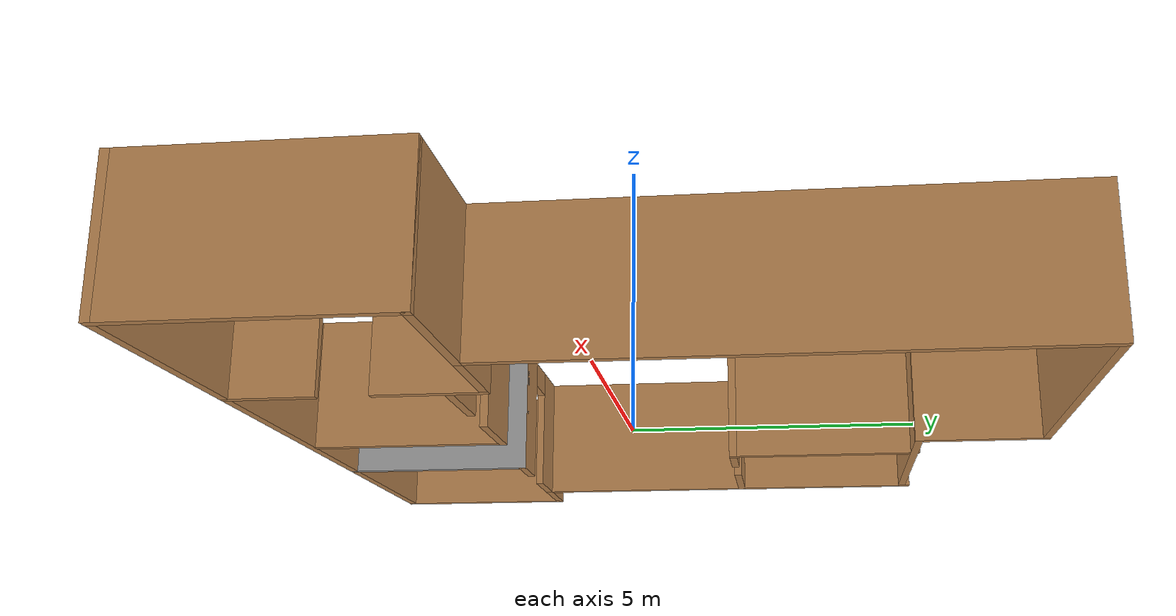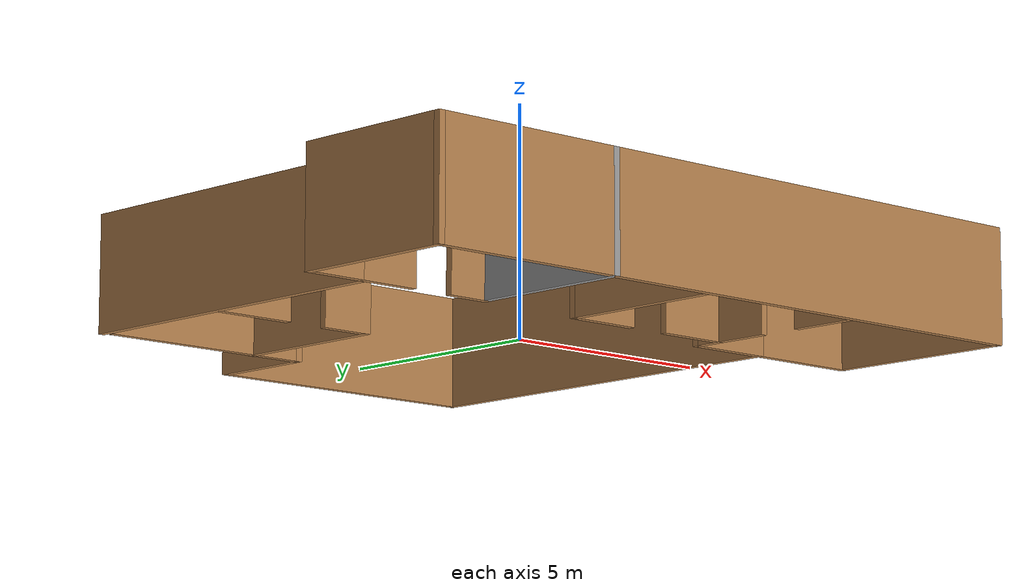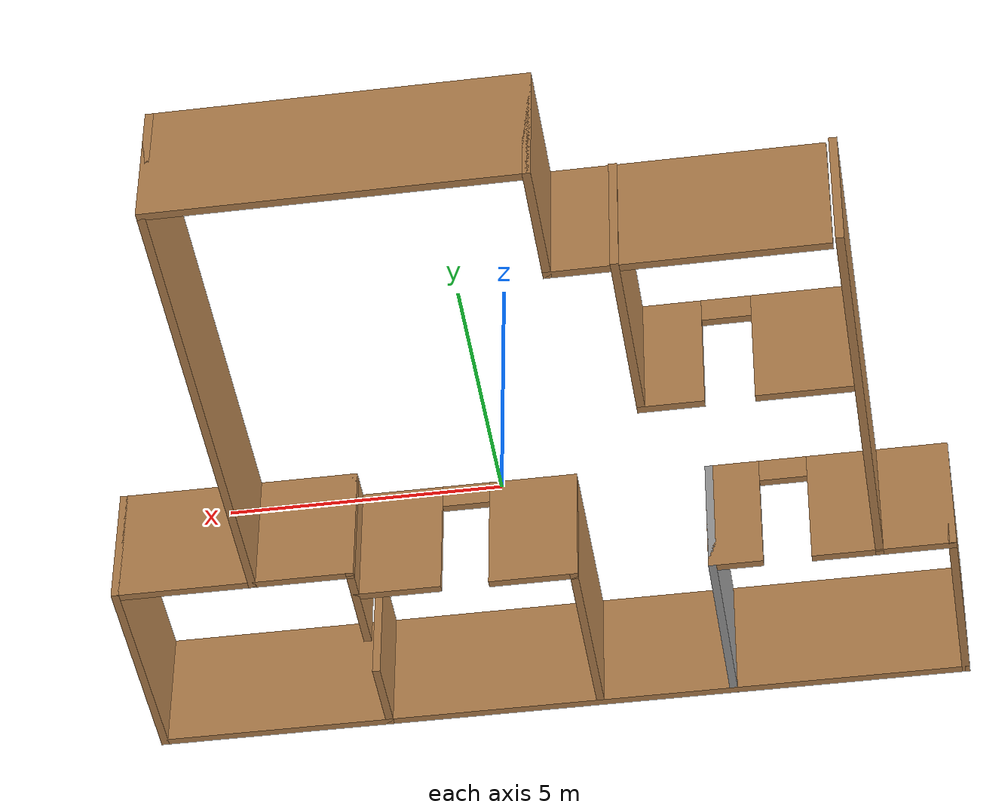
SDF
<?xml version='1.0'?>
<sdf version='1.7'>
  <model name='room3'>
    <pose>-0.176304 0.609734 0 0 -0 0</pose>
    <link name='Wall_0'>
      <collision name='Wall_0_Collision'>
        <geometry>
          <box>
            <size>5 0.15 2.5</size>
          </box>
        </geometry>
        <pose>0 0 1.25 0 -0 0</pose>
      </collision>
      <visual name='Wall_0_Visual'>
        <pose>0 0 1.25 0 -0 0</pose>
        <geometry>
          <box>
            <size>5 0.15 2.5</size>
          </box>
        </geometry>
        <material>
          <script>
            <uri>file://media/materials/scripts/gazebo.material</uri>
            <name>Gazebo/Wood</name>
          </script>
          <ambient>1 1 1 1</ambient>
        </material>
        <meta>
          <layer>0</layer>
        </meta>
      </visual>
      <pose>-3.825 4.625 0 0 -0 0</pose>
    </link>
    <link name='Wall_10'>
      <collision name='Wall_10_Collision'>
        <geometry>
          <box>
            <size>9.75 0.15 2.5</size>
          </box>
        </geometry>
        <pose>0 0 1.25 0 -0 0</pose>
      </collision>
      <visual name='Wall_10_Visual'>
        <pose>0 0 1.25 0 -0 0</pose>
        <geometry>
          <box>
            <size>9.75 0.15 2.5</size>
          </box>
        </geometry>
        <material>
          <script>
            <uri>file://media/materials/scripts/gazebo.material</uri>
            <name>Gazebo/Wood</name>
          </script>
          <ambient>1 1 1 1</ambient>
        </material>
        <meta>
          <layer>0</layer>
        </meta>
      </visual>
      <pose>5.2 2.175 0 0 -0 -1.5708</pose>
    </link>
    <link name='Wall_12'>
      <collision name='Wall_12_Collision'>
        <geometry>
          <box>
            <size>2.75 0.15 2.5</size>
          </box>
        </geometry>
        <pose>0 0 1.25 0 -0 0</pose>
      </collision>
      <visual name='Wall_12_Visual'>
        <pose>0 0 1.25 0 -0 0</pose>
        <geometry>
          <box>
            <size>2.75 0.15 2.5</size>
          </box>
        </geometry>
        <material>
          <script>
            <uri>file://media/materials/scripts/gazebo.material</uri>
            <name>Gazebo/Wood</name>
          </script>
          <ambient>1 1 1 1</ambient>
        </material>
        <meta>
          <layer>0</layer>
        </meta>
      </visual>
      <pose>6.5 -2.625 0 0 -0 0</pose>
    </link>
    <link name='Wall_13'>
      <collision name='Wall_13_Collision'>
        <geometry>
          <box>
            <size>4.5 0.15 2.5</size>
          </box>
        </geometry>
        <pose>0 0 1.25 0 -0 0</pose>
      </collision>
      <visual name='Wall_13_Visual'>
        <pose>0 0 1.25 0 -0 0</pose>
        <geometry>
          <box>
            <size>4.5 0.15 2.5</size>
          </box>
        </geometry>
        <material>
          <script>
            <uri>file://media/materials/scripts/gazebo.material</uri>
            <name>Gazebo/Wood</name>
          </script>
          <ambient>1 1 1 1</ambient>
        </material>
        <meta>
          <layer>0</layer>
        </meta>
      </visual>
      <pose>7.8 -4.8 0 0 -0 -1.5708</pose>
    </link>
    <link name='Wall_14'>
      <collision name='Wall_14_Collision'>
        <geometry>
          <box>
            <size>15.75 0.15 2.5</size>
          </box>
        </geometry>
        <pose>0 0 1.25 0 -0 0</pose>
      </collision>
      <visual name='Wall_14_Visual'>
        <pose>0 0 1.25 0 -0 0</pose>
        <geometry>
          <box>
            <size>15.75 0.15 2.5</size>
          </box>
        </geometry>
        <material>
          <script>
            <uri>file://media/materials/scripts/gazebo.material</uri>
            <name>Gazebo/Wood</name>
          </script>
          <ambient>1 1 1 1</ambient>
        </material>
        <meta>
          <layer>0</layer>
        </meta>
      </visual>
      <pose>0 -6.975 0 0 -0 3.14159</pose>
    </link>
    <link name='Wall_15'>
      <collision name='Wall_15_Collision'>
        <geometry>
          <box>
            <size>3.75 0.15 2.5</size>
          </box>
        </geometry>
        <pose>0 0 1.25 0 -0 0</pose>
      </collision>
      <visual name='Wall_15_Visual'>
        <pose>0 0 1.25 0 -0 0</pose>
        <geometry>
          <box>
            <size>3.75 0.15 2.5</size>
          </box>
        </geometry>
        <material>
          <script>
            <uri>file://media/materials/scripts/gazebo.material</uri>
            <name>Gazebo/Wood</name>
          </script>
          <ambient>1 1 1 1</ambient>
        </material>
        <meta>
          <layer>0</layer>
        </meta>
      </visual>
      <pose>-7.8 -5.175 0 0 -0 1.5708</pose>
    </link>
    <link name='Wall_16'>
      <collision name='Wall_16_Collision'>
        <geometry>
          <box>
            <size>1.5 0.15 2.5</size>
          </box>
        </geometry>
        <pose>0 0 1.25 0 -0 0</pose>
      </collision>
      <visual name='Wall_16_Visual'>
        <pose>0 0 1.25 0 -0 0</pose>
        <geometry>
          <box>
            <size>1.5 0.15 2.5</size>
          </box>
        </geometry>
        <material>
          <script>
            <uri>file://media/materials/scripts/gazebo.material</uri>
            <name>Gazebo/Wood</name>
          </script>
          <ambient>1 1 1 1</ambient>
        </material>
        <meta>
          <layer>0</layer>
        </meta>
      </visual>
      <pose>-7.125 -3.375 0 0 -0 0</pose>
    </link>
    <link name='Wall_17'>
      <collision name='Wall_17_Collision'>
        <geometry>
          <box>
            <size>8.25 0.15 2.5</size>
          </box>
        </geometry>
        <pose>0 0 1.25 0 -0 0</pose>
      </collision>
      <visual name='Wall_17_Visual'>
        <pose>0 0 1.25 0 -0 0</pose>
        <geometry>
          <box>
            <size>8.25 0.15 2.5</size>
          </box>
        </geometry>
        <material>
          <script>
            <uri>file://media/materials/scripts/gazebo.material</uri>
            <name>Gazebo/Wood</name>
          </script>
          <ambient>1 1 1 1</ambient>
        </material>
        <meta>
          <layer>0</layer>
        </meta>
      </visual>
      <pose>-6.45 0.675 0 0 -0 1.5708</pose>
    </link>
    <link name='Wall_19'>
      <collision name='Wall_19_Collision'>
        <geometry>
          <box>
            <size>3.75 0.15 2.5</size>
          </box>
        </geometry>
        <pose>0 0 1.25 0 -0 0</pose>
      </collision>
      <visual name='Wall_19_Visual'>
        <pose>0 0 1.25 0 -0 0</pose>
        <geometry>
          <box>
            <size>3.75 0.15 2.5</size>
          </box>
        </geometry>
        <material>
          <script>
            <uri>file://media/materials/scripts/gazebo.material</uri>
            <name>Gazebo/Wood</name>
          </script>
          <ambient>1 1 1 1</ambient>
        </material>
        <meta>
          <layer>0</layer>
        </meta>
      </visual>
      <pose>-2.57633 2.85608 0 0 -0 -1.5708</pose>
    </link>
    <link name='Wall_20'>
      <pose>-4.50133 1.05608 0 0 -0 3.14159</pose>
      <visual name='Wall_20_Visual_0'>
        <pose>-1.39215 0 1.25 0 -0 0</pose>
        <geometry>
          <box>
            <size>1.21569 0.15 2.5</size>
          </box>
        </geometry>
        <material>
          <script>
            <uri>file://media/materials/scripts/gazebo.material</uri>
            <name>Gazebo/Wood</name>
          </script>
          <ambient>1 1 1 1</ambient>
        </material>
        <meta>
          <layer>0</layer>
        </meta>
      </visual>
      <collision name='Wall_20_Collision_0'>
        <geometry>
          <box>
            <size>1.21569 0.15 2.5</size>
          </box>
        </geometry>
        <pose>-1.39215 0 1.25 0 -0 0</pose>
      </collision>
      <visual name='Wall_20_Visual_1'>
        <pose>1.05785 0 1.25 0 -0 0</pose>
        <geometry>
          <box>
            <size>1.88431 0.15 2.5</size>
          </box>
        </geometry>
        <material>
          <script>
            <uri>file://media/materials/scripts/gazebo.material</uri>
            <name>Gazebo/Wood</name>
          </script>
          <ambient>1 1 1 1</ambient>
        </material>
        <meta>
          <layer>0</layer>
        </meta>
      </visual>
      <collision name='Wall_20_Collision_1'>
        <geometry>
          <box>
            <size>1.88431 0.15 2.5</size>
          </box>
        </geometry>
        <pose>1.05785 0 1.25 0 -0 0</pose>
      </collision>
      <visual name='Wall_20_Visual_2'>
        <pose>-0.334308 0 2.25 0 -0 0</pose>
        <geometry>
          <box>
            <size>0.9 0.15 0.5</size>
          </box>
        </geometry>
        <material>
          <script>
            <uri>file://media/materials/scripts/gazebo.material</uri>
            <name>Gazebo/Wood</name>
          </script>
          <ambient>1 1 1 1</ambient>
        </material>
        <meta>
          <layer>0</layer>
        </meta>
      </visual>
      <collision name='Wall_20_Collision_2'>
        <geometry>
          <box>
            <size>0.9 0.15 0.5</size>
          </box>
        </geometry>
        <pose>-0.334308 0 2.25 0 -0 0</pose>
      </collision>
    </link>
    <link name='Wall_22'>
      <collision name='Wall_22_Collision'>
        <geometry>
          <box>
            <size>2 0.15 2.5</size>
          </box>
        </geometry>
        <pose>0 0 1.25 0 -0 0</pose>
      </collision>
      <visual name='Wall_22_Visual'>
        <pose>0 0 1.25 0 -0 0</pose>
        <geometry>
          <box>
            <size>2 0.15 2.5</size>
          </box>
        </geometry>
        <material>
          <script>
            <uri>file://media/materials/scripts/gazebo.material</uri>
            <name>Gazebo/Wood</name>
          </script>
          <ambient>1 1 1 1</ambient>
        </material>
        <meta>
          <layer>0</layer>
        </meta>
      </visual>
      <pose>4.275 -2.625 0 0 -0 3.14159</pose>
    </link>
    <link name='Wall_23'>
      <pose>3.35 -4.8 0 0 -0 -1.5708</pose>
      <visual name='Wall_23_Visual_0'>
        <pose>-1.26008 0 1.25 0 -0 0</pose>
        <geometry>
          <box>
            <size>1.97984 0.15 2.5</size>
          </box>
        </geometry>
        <material>
          <script>
            <uri>file://media/materials/scripts/gazebo.material</uri>
            <name>Gazebo/Wood</name>
          </script>
          <ambient>1 1 1 1</ambient>
        </material>
        <meta>
          <layer>0</layer>
        </meta>
      </visual>
      <collision name='Wall_23_Collision_0'>
        <geometry>
          <box>
            <size>1.97984 0.15 2.5</size>
          </box>
        </geometry>
        <pose>-1.26008 0 1.25 0 -0 0</pose>
      </collision>
      <visual name='Wall_23_Visual_1'>
        <pose>1.43992 0 1.25 0 -0 0</pose>
        <geometry>
          <box>
            <size>1.62016 0.15 2.5</size>
          </box>
        </geometry>
        <material>
          <script>
            <uri>file://media/materials/scripts/gazebo.material</uri>
            <name>Gazebo/Wood</name>
          </script>
          <ambient>1 1 1 1</ambient>
        </material>
        <meta>
          <layer>0</layer>
        </meta>
      </visual>
      <collision name='Wall_23_Collision_1'>
        <geometry>
          <box>
            <size>1.62016 0.15 2.5</size>
          </box>
        </geometry>
        <pose>1.43992 0 1.25 0 -0 0</pose>
      </collision>
      <visual name='Wall_23_Visual_2'>
        <pose>0.179844 0 2.25 0 -0 0</pose>
        <geometry>
          <box>
            <size>0.9 0.15 0.5</size>
          </box>
        </geometry>
        <material>
          <script>
            <uri>file://media/materials/scripts/gazebo.material</uri>
            <name>Gazebo/Wood</name>
          </script>
          <ambient>1 1 1 1</ambient>
        </material>
        <meta>
          <layer>0</layer>
        </meta>
      </visual>
      <collision name='Wall_23_Collision_2'>
        <geometry>
          <box>
            <size>0.9 0.15 0.5</size>
          </box>
        </geometry>
        <pose>0.179844 0 2.25 0 -0 0</pose>
      </collision>
    </link>
    <link name='Wall_25'>
      <pose>-4.9 -3.375 0 0 -0 0</pose>
      <visual name='Wall_25_Visual_0'>
        <pose>-0.961619 0 1.25 0 -0 0</pose>
        <geometry>
          <box>
            <size>1.32676 0.15 2.5</size>
          </box>
        </geometry>
        <material>
          <script>
            <uri>file://media/materials/scripts/gazebo.material</uri>
            <name>Gazebo/Wood</name>
          </script>
          <ambient>1 1 1 1</ambient>
        </material>
        <meta>
          <layer>0</layer>
        </meta>
      </visual>
      <collision name='Wall_25_Collision_0'>
        <geometry>
          <box>
            <size>1.32676 0.15 2.5</size>
          </box>
        </geometry>
        <pose>-0.961619 0 1.25 0 -0 0</pose>
      </collision>
      <visual name='Wall_25_Visual_1'>
        <pose>1.11338 0 1.25 0 -0 0</pose>
        <geometry>
          <box>
            <size>1.02324 0.15 2.5</size>
          </box>
        </geometry>
        <material>
          <script>
            <uri>file://media/materials/scripts/gazebo.material</uri>
            <name>Gazebo/Wood</name>
          </script>
          <ambient>1 1 1 1</ambient>
        </material>
        <meta>
          <layer>0</layer>
        </meta>
      </visual>
      <collision name='Wall_25_Collision_1'>
        <geometry>
          <box>
            <size>1.02324 0.15 2.5</size>
          </box>
        </geometry>
        <pose>1.11338 0 1.25 0 -0 0</pose>
      </collision>
      <visual name='Wall_25_Visual_2'>
        <pose>0.151762 0 2.25 0 -0 0</pose>
        <geometry>
          <box>
            <size>0.9 0.15 0.5</size>
          </box>
        </geometry>
        <material>
          <script>
            <uri>file://media/materials/scripts/gazebo.material</uri>
            <name>Gazebo/Wood</name>
          </script>
          <ambient>1 1 1 1</ambient>
        </material>
        <meta>
          <layer>0</layer>
        </meta>
      </visual>
      <collision name='Wall_25_Collision_2'>
        <geometry>
          <box>
            <size>0.9 0.15 0.5</size>
          </box>
        </geometry>
        <pose>0.151762 0 2.25 0 -0 0</pose>
      </collision>
    </link>
    <link name='Wall_29'>
      <pose>1.27758 -3.2362 0 0 -0 3.14159</pose>
      <visual name='Wall_29_Visual_0'>
        <pose>-1.28773 0 1.25 0 -0 0</pose>
        <geometry>
          <box>
            <size>1.67454 0.15 2.5</size>
          </box>
        </geometry>
        <material>
          <script>
            <uri>file://media/materials/scripts/gazebo.material</uri>
            <name>Gazebo/Wood</name>
          </script>
          <ambient>1 1 1 1</ambient>
        </material>
        <meta>
          <layer>0</layer>
        </meta>
      </visual>
      <collision name='Wall_29_Collision_0'>
        <geometry>
          <box>
            <size>1.67454 0.15 2.5</size>
          </box>
        </geometry>
        <pose>-1.28773 0 1.25 0 -0 0</pose>
      </collision>
      <visual name='Wall_29_Visual_1'>
        <pose>1.28727 0 1.25 0 -0 0</pose>
        <geometry>
          <box>
            <size>1.67545 0.15 2.5</size>
          </box>
        </geometry>
        <material>
          <script>
            <uri>file://media/materials/scripts/gazebo.material</uri>
            <name>Gazebo/Wood</name>
          </script>
          <ambient>1 1 1 1</ambient>
        </material>
        <meta>
          <layer>0</layer>
        </meta>
      </visual>
      <collision name='Wall_29_Collision_1'>
        <geometry>
          <box>
            <size>1.67545 0.15 2.5</size>
          </box>
        </geometry>
        <pose>1.28727 0 1.25 0 -0 0</pose>
      </collision>
      <visual name='Wall_29_Visual_2'>
        <pose>-0.000455 0 2.25 0 -0 0</pose>
        <geometry>
          <box>
            <size>0.9 0.15 0.5</size>
          </box>
        </geometry>
        <material>
          <script>
            <uri>file://media/materials/scripts/gazebo.material</uri>
            <name>Gazebo/Wood</name>
          </script>
          <ambient>1 1 1 1</ambient>
        </material>
        <meta>
          <layer>0</layer>
        </meta>
      </visual>
      <collision name='Wall_29_Collision_2'>
        <geometry>
          <box>
            <size>0.9 0.15 0.5</size>
          </box>
        </geometry>
        <pose>-0.000455 0 2.25 0 -0 0</pose>
      </collision>
    </link>
    <link name='Wall_3'>
      <collision name='Wall_3_Collision'>
        <geometry>
          <box>
            <size>2.5 0.15 2.5</size>
          </box>
        </geometry>
        <pose>0 0 1.25 0 -0 0</pose>
      </collision>
      <visual name='Wall_3_Visual'>
        <pose>0 0 1.25 0 -0 0</pose>
        <geometry>
          <box>
            <size>2.5 0.15 2.5</size>
          </box>
        </geometry>
        <material>
          <script>
            <uri>file://media/materials/scripts/gazebo.material</uri>
            <name>Gazebo/Wood</name>
          </script>
          <ambient>1 1 1 1</ambient>
        </material>
        <meta>
          <layer>0</layer>
        </meta>
      </visual>
      <pose>-1.4 5.8 0 0 -0 1.5708</pose>
    </link>
    <link name='Wall_30'>
      <collision name='Wall_30_Collision'>
        <geometry>
          <box>
            <size>3.75 0.15 2.5</size>
          </box>
        </geometry>
        <pose>0 0 1.25 0 -0 0</pose>
      </collision>
      <visual name='Wall_30_Visual'>
        <pose>0 0 1.25 0 -0 0</pose>
        <geometry>
          <box>
            <size>3.75 0.15 2.5</size>
          </box>
        </geometry>
        <material>
          <script>
            <uri>file://media/materials/scripts/gazebo.material</uri>
            <name>Gazebo/Wood</name>
          </script>
          <ambient>1 1 1 1</ambient>
        </material>
        <meta>
          <layer>0</layer>
        </meta>
      </visual>
      <pose>-0.772418 -5.0362 0 0 -0 -1.5708</pose>
    </link>
    <link name='Wall_32'>
      <collision name='Wall_32_Collision'>
        <geometry>
          <box>
            <size>3.75 0.15 2.5</size>
          </box>
        </geometry>
        <pose>0 0 1.25 0 -0 0</pose>
      </collision>
      <visual name='Wall_32_Visual'>
        <pose>0 0 1.25 0 -0 0</pose>
        <geometry>
          <box>
            <size>3.75 0.15 2.5</size>
          </box>
        </geometry>
        <material>
          <script>
            <uri>file://media/materials/scripts/gazebo.material</uri>
            <name>Gazebo/Grey</name>
          </script>
          <ambient>1 1 1 1</ambient>
        </material>
        <meta>
          <layer>0</layer>
        </meta>
      </visual>
      <pose>-3.35 -5.175 0 0 -0 -1.5708</pose>
    </link>
    <link name='Wall_4'>
      <collision name='Wall_4_Collision'>
        <geometry>
          <box>
            <size>6.75 0.15 2.5</size>
          </box>
        </geometry>
        <pose>0 0 1.25 0 -0 0</pose>
      </collision>
      <visual name='Wall_4_Visual'>
        <pose>0 0 1.25 0 -0 0</pose>
        <geometry>
          <box>
            <size>6.75 0.15 2.5</size>
          </box>
        </geometry>
        <material>
          <script>
            <uri>file://media/materials/scripts/gazebo.material</uri>
            <name>Gazebo/Wood</name>
          </script>
          <ambient>1 1 1 1</ambient>
        </material>
        <meta>
          <layer>0</layer>
        </meta>
      </visual>
      <pose>1.9 6.975 0 0 -0 0</pose>
    </link>
    <static>1</static>
  </model>
</sdf>
